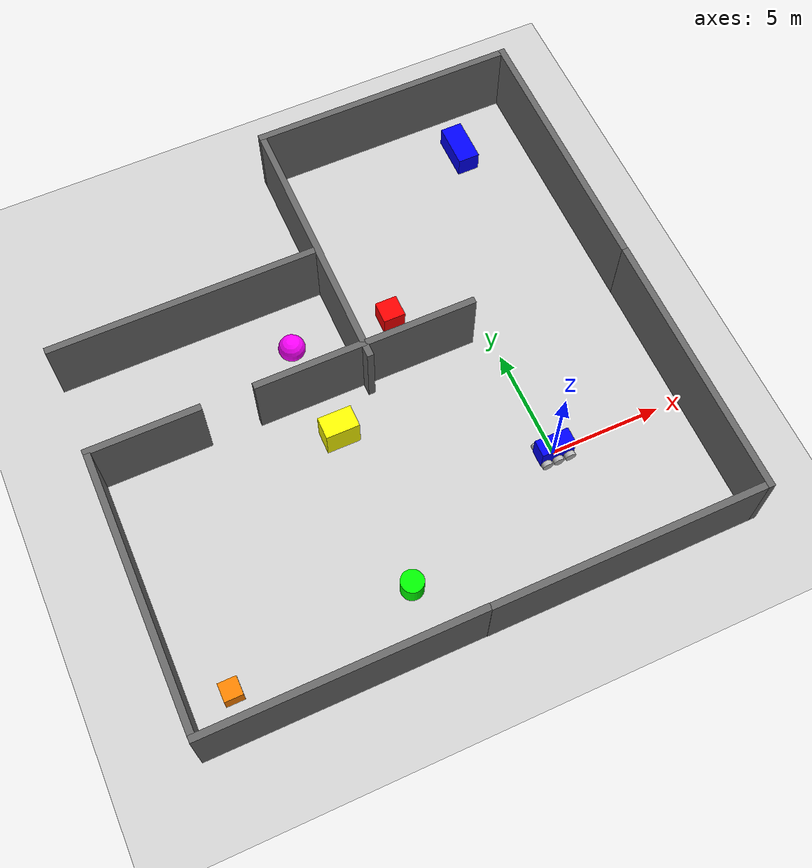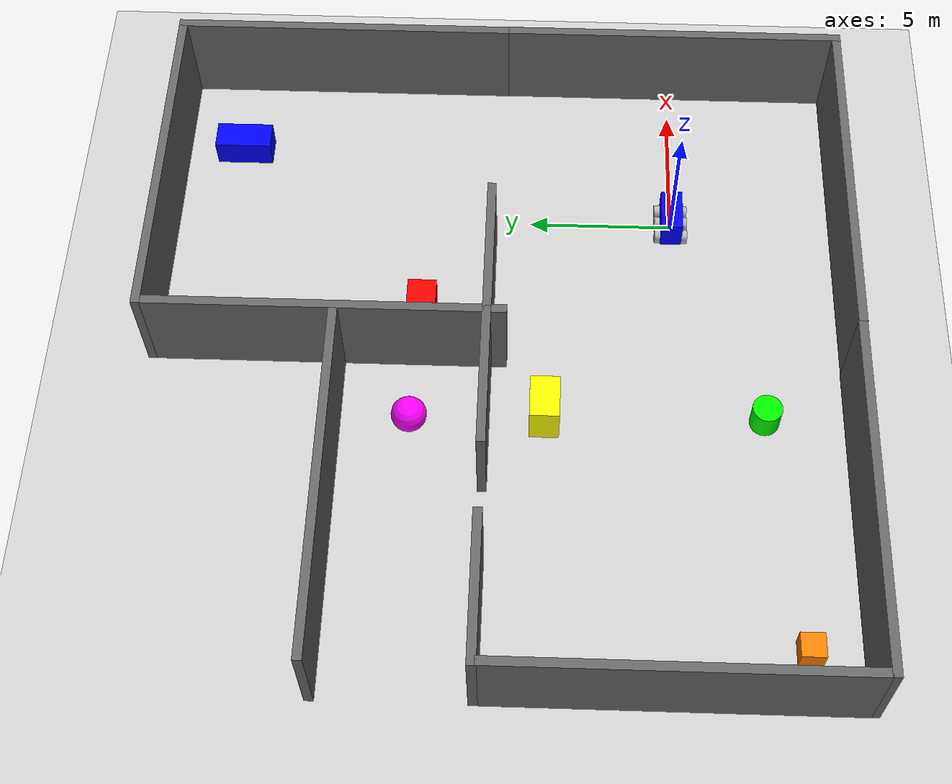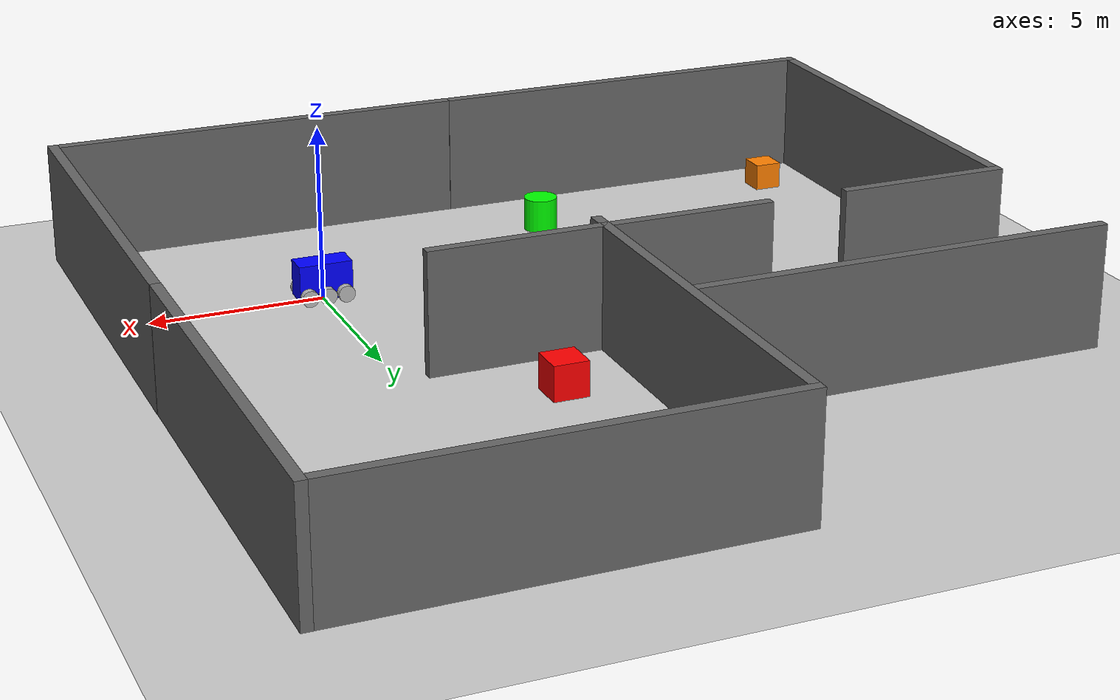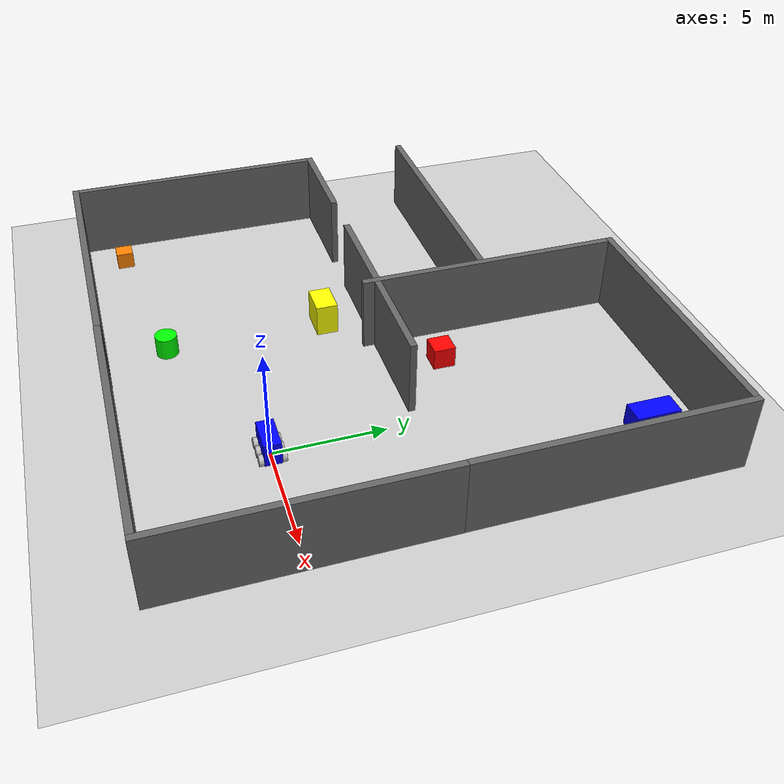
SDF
<sdf version="1.10">
 <world name="room">
  <physics name="1ms" type="ignored">
   <max_step_size>0.001</max_step_size>
   <real_time_factor>1.0</real_time_factor>
  </physics>
  <plugin filename="gz-sim-physics-system" name="gz::sim::systems::Physics"/>
  <plugin filename="gz-sim-user-commands-system" name="gz::sim::systems::UserCommands"/>
  <plugin filename="gz-sim-scene-broadcaster-system" name="gz::sim::systems::SceneBroadcaster"/>
  <plugin filename="gz-sim-sensors-system" name="gz::sim::systems::Sensors">
   <render_engine>ogre2</render_engine>
  </plugin>
  <plugin filename="gz-sim-thermal-sensor-system" name="gz::sim::systems::ThermalSensor"/>
  <light type="directional" name="sun">
   <pose>0 0 10 0 0 0</pose>
   <diffuse>0.8 0.8 0.8 1</diffuse>
   <specular>0.2 0.2 0.2 1</specular>
   <attenuation>
    <range>1000</range>
    <constant>0.9</constant>
    <linear>0.01</linear>
    <quadratic>0.001</quadratic>
   </attenuation>
   <direction>-0.5 0.1 -0.9</direction>
  </light>
  <model name="ground_plane">
   <static>true</static>
   <link name="link">
    <collision name="collision"><geometry><plane><normal>0 0 1</normal></plane></geometry></collision>
    <visual name="visual">
     <geometry><plane><normal>0 0 1</normal><size>100 100</size></plane></geometry>
     <material>
      <ambient>0.8 0.8 0.8 1</ambient>
      <diffuse>0.8 0.8 0.8 1</diffuse>
      <specular>0.8 0.8 0.8 1</specular>
     </material>
    </visual>
   </link>
  </model>
  <include><uri>file:///workspace/prototypes/3d-cartographer-demo/flip</uri><name>FLIP</name></include>
  <include>
   <uri>file:///workspace/models/gazebo/obstacles/walls/horizontalWall0_3x12x3_5</uri>
   <name>horizontalWallBig</name>
   <pose>6.1378297805786133 0 1.75 0 0 0</pose>
  </include>
  <include>
   <uri>file:///workspace/models/gazebo/obstacles/walls/horizontalWall0_3x12x3_5</uri>
   <name>verticalWallBig</name>
   <pose>7.2243547037942335e-06 -5.8478302955627441 1.75 0 0 1.5708000357176291</pose>
  </include>
  <include>
   <uri>file:///workspace/models/gazebo/obstacles/walls/verticalWall0_3x5x3_5</uri>
   <name>verticalWallSmall</name>
   <pose>-3.2926583290100098 6.3540897369384766 1.75 0 0 1.5707999672671717</pose>
  </include>
  <include>
   <uri>file:///workspace/models/gazebo/obstacles/walls/horizontalWall0_3x12x3_5</uri>
   <name>horizontalWallBig_1</name>
   <pose>6.1292400360107422 11.98643970489502 1.75 0 0 0</pose>
  </include>
  <include>
   <uri>file:///workspace/models/gazebo/obstacles/walls/verticalWall0_3x12x3_5</uri>
   <name>verticalWallBig_1</name>
   <pose>0.00072676839772611856 17.835100173950195 1.75 0 0 1.5707999672671711</pose>
  </include>
  <include>
   <uri>file:///workspace/models/gazebo/obstacles/walls/horizontalWall0_3x12x3_5</uri>
   <name>horizontalWallBig_2</name>
   <pose>-5.8510937690734863 11.696800231933594 1.75 0 0 0</pose>
  </include>
  <include>
   <uri>file:///workspace/models/gazebo/obstacles/walls/verticalWall0_3x12x3_5</uri>
   <name>verticalWallBig_2</name>
   <pose>-11.975589752197266 -5.8330597877502441 1.75 0 0 1.5707999672671717</pose>
  </include>
  <include>
   <uri>file:///workspace/models/gazebo/obstacles/walls/horizontalWall0_3x12x3_5</uri>
   <name>horizontalWallBig_3</name>
   <pose>-17.832462310791016 0.27177301049232483 1.75 0 0 0</pose>
  </include>
  <include>
   <uri>file:///workspace/models/gazebo/obstacles/walls/verticalWall0_3x5x3_5</uri>
   <name>verticalWallSmall_2</name>
   <pose>-8.252507209777832 6.3668909072875977 1.75 0 0 1.5707999672671717</pose>
  </include>
  <include>
   <uri>file:///workspace/models/gazebo/obstacles/walls/verticalWall0_3x5x3_5</uri>
   <name>verticalWallSmall_3</name>
   <pose>-15.482864379882812 6.3641500473022452 1.75 0 0 1.5707999672671717</pose>
  </include>
  <include>
   <uri>file:///workspace/models/gazebo/obstacles/walls/verticalWall0_3x12x3_5</uri>
   <name>verticalWallBig_3</name>
   <pose>-11.987987518310547 11.363300323486328 1.75 0 0 1.5707999672671717</pose>
  </include>
  <include>
   <uri>file:///workspace/models/gazebo/obstacles/shapes/redCube1x1x1</uri>
   <name>redCube</name>
   <pose>-3.6559658050537109 8.7096595764160156 0.5 0 0 0</pose>
  </include>
  <include>
   <uri>file:///workspace/models/gazebo/obstacles/shapes/greenCylinder0_5x1</uri>
   <name>greenCylinder</name>
   <pose>-7.8899140357971191 -3 0.5 0 0 0</pose>
  </include>
  <include>
   <uri>file:///workspace/models/gazebo/obstacles/shapes/blueBox1x2x1</uri>
   <name>blueBox</name>
   <pose>3 15.608985900878906 0.5 0 0 0</pose>
  </include>
  <include>
   <uri>file:///workspace/models/gazebo/obstacles/shapes/yellowBox1_5x1x1_5</uri>
   <name>yellowBox</name>
   <pose>-7.9256100654602051 4.3805632591247559 0.75 0 0 0</pose>
  </include>
  <include>
   <uri>file:///workspace/models/gazebo/obstacles/shapes/pinkBall0_6</uri>
   <name>pinkBall</name>
   <pose>-8.2594108581542969 8.8796701431274414 0.60000002384185791 0 0 0</pose>
  </include>
  <include>
   <uri>file:///workspace/models/gazebo/obstacles/shapes/orangeBox0_8x0_8x0_8</uri>
   <name>orangeBox</name>
   <pose>-16 -4 0.4 0 0 0</pose>
  </include>
 </world>
</sdf>

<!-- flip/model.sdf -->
<sdf version="1.10">
  <model name='FLIP' canonical_link='chassis'>
    <pose>0 0 0 0 0 0</pose>

    <link name='chassis'>
      <pose relative_to='__model__'>0 0 0.625 0 0 0</pose>
      <inertial>
        <pose>0 0 0 0 0 0</pose>
        <mass>450.0</mass>
        <inertia>
          <ixx>62.438</ixx>
          <ixy>0</ixy>
          <ixz>0</ixz>
          <iyy>131.438</iyy>
          <iyz>0</iyz>
          <izz>111.188</izz>
        </inertia>
      </inertial>
      <visual name='visual'>
        <geometry><box><size>1.55 0.75 1.05</size></box></geometry>
        <material>
          <ambient>0.0 0.0 1.0 1</ambient>
          <diffuse>0.0 0.0 1.0 1</diffuse>
          <specular>0.0 0.0 1.0 1</specular>
        </material>
      </visual>
      <collision name='collision'>
        <geometry><box><size>1.55 0.75 1.05</size></box></geometry>
      </collision>
      <sensor name="imu_sensor" type="imu">
        <always_on>1</always_on>
        <update_rate>20</update_rate>
        <visualize>true</visualize>
        <topic>imu</topic>
      </sensor>
      <sensor name="gpu_lidar" type="gpu_lidar">
        <pose>0.6 0 0.3 0 0 0</pose>
        <always_on>1</always_on>
        <update_rate>10</update_rate>
        <lidar>
          <scan>
            <horizontal>
              <samples>640</samples>
              <resolution>1</resolution>
              <min_angle>-1.396263</min_angle>
              <max_angle>1.396263</max_angle>
            </horizontal>
            <vertical>
              <samples>12</samples>
              <resolution>1</resolution>
              <min_angle>-0.261779</min_angle>
              <max_angle>0.261779</max_angle>
            </vertical>
          </scan>
          <range>
            <min>0.08</min>
            <max>10.0</max>
            <resolution>0.01</resolution>
          </range>
        </lidar>
        <visualize>true</visualize>
        <topic>lidar</topic>
      </sensor>
    </link>

    <!-- =============includes + plugin + joint van sensoren=========== -->
    <!-- THERMAL CAMERA -->
    <include>
      <uri>file:///workspace/models/plugins/thermal_camera.sdf</uri>
      <name>thermal_cam_instance</name>
      <pose relative_to="chassis">0.3 0 -0.2 0 0 0</pose>
    </include>

    <!-- thermal camera aan chassis -->
    <joint name="thermal_camera_fixed" type="fixed">
      <parent>chassis</parent>
      <child>thermal_cam_instance::thermal_body</child>
    </joint>

    <!-- FRONT CAMERA -->
    <include>
      <uri>file:///workspace/models/plugins/front_camera.sdf</uri>
      <name>front_camera</name>
      <pose>0.9 0 1.2 0 0 0</pose>
    </include>

    <joint name="front_cam_joint" type="fixed">
      <parent>chassis</parent>
      <child>front_camera::front_camera_link</child>
    </joint>

    <!-- REAR CAMERA -->
    <include>
      <uri>file:///workspace/models/plugins/rear_camera.sdf</uri>
      <name>rear_camera</name>
      <pose>-0.9 0 1.2 0 0 0</pose>
    </include>

    <joint name="rear_cam_joint" type="fixed">
      <parent>chassis</parent>
      <child>rear_camera::rear_camera_link</child>
    </joint>

    <link name='left_back_wheel'>
      <pose relative_to="chassis">-0.533 0.475 -0.383 -1.5707 0 0</pose>
      <inertial><mass>5</mass><inertia><ixx>0.694</ixx><ixy>0</ixy><ixz>0</ixz><iyy>1.460</iyy><iyz>0</iyz><izz>1.235</izz></inertia></inertial>
      <visual name='visual'><geometry><cylinder><radius>0.242</radius><length>0.2</length></cylinder></geometry></visual>
      <collision name='collision'><geometry><cylinder><radius>0.242</radius><length>0.2</length></cylinder></geometry></collision>
    </link>

    <link name='left_middle_wheel'>
      <pose relative_to="chassis">0 0.475 -0.383 -1.5707 0 0</pose>
      <inertial><mass>5</mass><inertia><ixx>0.694</ixx><ixy>0</ixy><ixz>0</ixz><iyy>1.460</iyy><iyz>0</iyz><izz>1.235</izz></inertia></inertial>
      <visual name='visual'><geometry><cylinder><radius>0.242</radius><length>0.2</length></cylinder></geometry></visual>
      <collision name='collision'><geometry><cylinder><radius>0.242</radius><length>0.2</length></cylinder></geometry></collision>
    </link>

    <link name='right_back_wheel'>
      <pose relative_to="chassis">-0.533 -0.475 -0.383 -1.5707 0 0</pose>
      <inertial><mass>5</mass><inertia><ixx>0.694</ixx><ixy>0</ixy><ixz>0</ixz><iyy>1.460</iyy><iyz>0</iyz><izz>1.235</izz></inertia></inertial>
      <visual name='visual'><geometry><cylinder><radius>0.242</radius><length>0.2</length></cylinder></geometry></visual>
      <collision name='collision'><geometry><cylinder><radius>0.242</radius><length>0.2</length></cylinder></geometry></collision>
    </link>

    <link name='right_middle_wheel'>
      <pose relative_to="chassis">0 -0.475 -0.383 -1.5707 0 0</pose>
      <inertial><mass>5</mass><inertia><ixx>0.694</ixx><ixy>0</ixy><ixz>0</ixz><iyy>1.460</iyy><iyz>0</iyz><izz>1.235</izz></inertia></inertial>
      <visual name='visual'><geometry><cylinder><radius>0.242</radius><length>0.2</length></cylinder></geometry></visual>
      <collision name='collision'><geometry><cylinder><radius>0.242</radius><length>0.2</length></cylinder></geometry></collision>
    </link>

    <link name='left_front_steer_link'>
      <pose relative_to="chassis">0.533 0.475 -0.383 0 0 0</pose>
      <inertial><mass>1.0</mass><inertia><ixx>0.01</ixx><ixy>0</ixy><ixz>0</ixz><iyy>0.01</iyy><iyz>0</iyz><izz>0.01</izz></inertia></inertial>
    </link>

    <link name='right_front_steer_link'>
      <pose relative_to="chassis">0.533 -0.475 -0.383 0 0 0</pose>
      <inertial><mass>1.0</mass><inertia><ixx>0.01</ixx><ixy>0</ixy><ixz>0</ixz><iyy>0.01</iyy><iyz>0</iyz><izz>0.01</izz></inertia></inertial>
    </link>

    <link name='left_front_wheel'>
      <pose relative_to="left_front_steer_link">0 0 0 -1.5707 0 0</pose>
      <inertial><mass>5</mass><inertia><ixx>0.694</ixx><ixy>0</ixy><ixz>0</ixz><iyy>1.460</iyy><iyz>0</iyz><izz>1.235</izz></inertia></inertial>
      <visual name='visual'>
        <geometry><cylinder><radius>0.242</radius><length>0.2</length></cylinder></geometry>
      </visual>
      <collision name='collision'><geometry><cylinder><radius>0.242</radius><length>0.2</length></cylinder></geometry></collision>
    </link>

    <link name='right_front_wheel'>
      <pose relative_to="right_front_steer_link">0 0 0 -1.5707 0 0</pose>
      <inertial><mass>5</mass><inertia><ixx>0.694</ixx><ixy>0</ixy><ixz>0</ixz><iyy>1.460</iyy><iyz>0</iyz><izz>1.235</izz></inertia></inertial>
      <visual name='visual'>
        <geometry><cylinder><radius>0.242</radius><length>0.2</length></cylinder></geometry>
      </visual>
      <collision name='collision'><geometry><cylinder><radius>0.242</radius><length>0.2</length></cylinder></geometry></collision>
    </link>

    <!-- Wheel joints -->
    <joint name="left_front_wheel_joint" type="revolute">
    <parent>chassis</parent>
    <child>left_front_wheel</child>
    <axis><xyz>0 0 1</xyz></axis>
    </joint>

    <joint name="left_middle_wheel_joint" type="revolute">
    <parent>chassis</parent>
    <child>left_middle_wheel</child>
    <axis><xyz>0 0 1</xyz></axis>
    </joint>

    <joint name="left_back_wheel_joint" type="revolute">
    <parent>chassis</parent>
    <child>left_back_wheel</child>
    <axis><xyz>0 0 1</xyz></axis>
    </joint>

    <joint name="right_front_wheel_joint" type="revolute">
    <parent>chassis</parent>
    <child>right_front_wheel</child>
    <axis><xyz>0 0 1</xyz></axis>
    </joint>

    <joint name="right_middle_wheel_joint" type="revolute">
    <parent>chassis</parent>
    <child>right_middle_wheel</child>
    <axis><xyz>0 0 1</xyz></axis>
    </joint>

    <joint name="right_back_wheel_joint" type="revolute">
    <parent>chassis</parent>
    <child>right_back_wheel</child>
    <axis><xyz>0 0 1</xyz></axis>
    </joint>

    <!-- Diff Drive Plugin -->
    <plugin
    filename="gz-sim-diff-drive-system"
    name="gz::sim::systems::DiffDrive">

    <!-- all 6 wheels driven -->
    <left_joint>left_back_wheel_joint</left_joint>
    <left_joint>left_middle_wheel_joint</left_joint>
    <left_joint>left_front_wheel_joint</left_joint>

    <right_joint>right_back_wheel_joint</right_joint>
    <right_joint>right_middle_wheel_joint</right_joint>
    <right_joint>right_front_wheel_joint</right_joint>

    <wheel_separation>0.95</wheel_separation>
    <wheel_radius>0.242</wheel_radius>

    <topic>/model/FLIP/cmd_vel</topic>
    <odom_topic>/model/FLIP/odometry</odom_topic>
    <tf_topic>/model/FLIP/tf</tf_topic>

    <frame_id>odom</frame_id>
    <child_frame_id>chassis</child_frame_id>

    </plugin>

    <!-- Moving Forward-->
    <plugin filename="gz-sim-triggered-publisher-system"
            name="gz::sim::systems::TriggeredPublisher">
        <input type="gz.msgs.Int32" topic="/keyboard/keypress">
            <match field="data">16777235</match>
        </input>
        <output type="gz.msgs.Twist" topic="/model/FLIP/cmd_vel">
            linear: {x: 0.5}, angular: {z: 0.0}
        </output>
    </plugin>

    <!-- Moving Backward-->
    <plugin filename="gz-sim-triggered-publisher-system"
            name="gz::sim::systems::TriggeredPublisher">
        <input type="gz.msgs.Int32" topic="/keyboard/keypress">
            <match field="data">16777237</match>
        </input>
        <output type="gz.msgs.Twist" topic="/model/FLIP/cmd_vel">
            linear: {x: -0.5}, angular: {z: 0.0}
        </output>
    </plugin>

    <!-- Moving left-->
    <plugin filename="gz-sim-triggered-publisher-system"
            name="gz::sim::systems::TriggeredPublisher">
        <input type="gz.msgs.Int32" topic="/keyboard/keypress">
            <match field="data">16777234</match>
        </input>
        <output type="gz.msgs.Twist" topic="/model/FLIP/cmd_vel">
            linear: {x: 0.0}, angular: {z: 1.0}
        </output>
    </plugin>

    <!-- Moving right-->
    <plugin filename="gz-sim-triggered-publisher-system"
            name="gz::sim::systems::TriggeredPublisher">
        <input type="gz.msgs.Int32" topic="/keyboard/keypress">
            <match field="data">16777236</match>
        </input>
        <output type="gz.msgs.Twist" topic="/model/FLIP/cmd_vel">
            linear: {x: 0.0}, angular: {z: -1.0}
        </output>
    </plugin>
  </model>
</sdf>

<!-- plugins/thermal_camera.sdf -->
<sdf version="1.10">

  <model name="thermal_camera_model" canonical_link="thermal_body">
    <pose>0 0 0 0 0 0</pose>
    <static>false</static>

    <!-- Gecombineerde thermal camera link -->
    <link name="thermal_body">
      <pose>0 0 0 0 0 0</pose>

      <!-- Behuizing -->
      <visual name="thermal_visual">
        <geometry>
          <box>
            <size>0.1 0.1 0.1</size>
          </box>
        </geometry>
        <material>
          <ambient>1 0 0 1</ambient>
          <diffuse>1 0 0 1</diffuse>
          <specular>0.2 0.2 0.2 1</specular>
        </material>
      </visual>

      <!-- Collision -->
      <collision name="thermal_collision">
        <geometry>
          <box>
            <size>0.1 0.1 0.1</size>
          </box>
        </geometry>
      </collision>

      <!-- Massa -->
      <inertial>
        <mass>0.5</mass>
        <inertia>
          <ixx>0.001</ixx>
          <iyy>0.001</iyy>
          <izz>0.001</izz>
          <ixy>0</ixy>
          <ixz>0</ixz>
          <iyz>0</iyz>
        </inertia>
      </inertial>

      <!-- Thermal sensor (nu in dezelfde link) -->
      <sensor name="thermal_camera" type="thermal">
        <pose>0 0 0 0 0 0</pose>
        <always_on>true</always_on>
        <update_rate>30</update_rate>
        <visualize>true</visualize>

        <topic>/FLIP/thermal_camera</topic>

        <camera>
          <horizontal_fov>1.047</horizontal_fov>
          <image>
            <width>320</width>
            <height>240</height>
            <format>L16</format>
          </image>
          <clip>
            <near>0.1</near>
            <far>100</far>
          </clip>
        </camera>
      </sensor>

    </link>

  </model>
</sdf>

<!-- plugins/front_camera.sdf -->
<sdf version="1.10">

  <model name="front_camera" canonical_link="front_camera_link">
    <pose>0 0 0 0 0 0</pose>
    <static>false</static>

    <link name="front_camera_link">

      <inertial>
        <mass>0.5</mass>
        <inertia>
          <ixx>0.001</ixx>
          <iyy>0.001</iyy>
          <izz>0.001</izz>
        </inertia>
      </inertial>

      <sensor name="camera" type="camera">
        <pose>0 0 0 0 0 0</pose>

        <always_on>true</always_on>
        <update_rate>30</update_rate>

        <camera>
          <horizontal_fov>1.047</horizontal_fov>
          <image>
            <width>640</width>
            <height>480</height>
            <format>R8G8B8</format>
          </image>
          <clip>
            <near>0.1</near>
            <far>100</far>
          </clip>
        </camera>

        <topic>/front/image</topic>
      </sensor>

    </link>
  </model>

</sdf>

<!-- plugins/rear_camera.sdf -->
<sdf version="1.10">

  <model name="rear_camera" canonical_link="rear_camera_link">
    <pose>0 0 0 0 0 0</pose>
    <static>false</static>

    <link name="rear_camera_link">

      <inertial>
        <mass>0.5</mass>
        <inertia>
          <ixx>0.001</ixx>
          <iyy>0.001</iyy>
          <izz>0.001</izz>
        </inertia>
      </inertial>

      <sensor name="camera" type="camera">
        <pose>0 0 0 0 0 3.14159</pose>

        <always_on>true</always_on>
        <update_rate>30</update_rate>

        <camera>
          <horizontal_fov>1.047</horizontal_fov>
          <image>
            <width>640</width>
            <height>480</height>
            <format>R8G8B8</format>
          </image>
          <clip>
            <near>0.1</near>
            <far>100</far>
          </clip>
        </camera>

        <topic>/rear/image</topic>
      </sensor>

    </link>
  </model>

</sdf>

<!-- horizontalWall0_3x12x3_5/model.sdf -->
<sdf version="1.10">
    <model name="horizontalWall0_3x12x3_5">
      <static>true</static>
      <pose>4.2 0 1.75 0 0 0</pose>
      <link name="link">
        <collision name="collision">
          <geometry><box><size>0.3 12.0 3.5</size></box></geometry>
        </collision>
        <visual name="visual">
          <geometry><box><size>0.3 12.0 3.5</size></box></geometry>
          <material>
            <ambient>0.4 0.4 0.4 1</ambient>
            <diffuse>0.4 0.4 0.4 1</diffuse>
            <specular>0.2 0.2 0.2 1</specular>
          </material>
        </visual>
      </link>
    </model>
</sdf>

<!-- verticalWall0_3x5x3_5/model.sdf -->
<sdf version="1.10">
    <model name="horizontalWall0_3x5x3_5">
      <static>true</static>
      <pose>4.2 0 1.75 0 0 0</pose>
      <link name="link">
        <collision name="collision">
          <geometry><box><size>0.3 5.0 3.5</size></box></geometry>
        </collision>
        <visual name="visual">
          <geometry><box><size>0.3 5.0 3.5</size></box></geometry>
          <material>
            <ambient>0.4 0.4 0.4 1</ambient>
            <diffuse>0.4 0.4 0.4 1</diffuse>
            <specular>0.2 0.2 0.2 1</specular>
          </material>
        </visual>
      </link>
    </model>
</sdf>

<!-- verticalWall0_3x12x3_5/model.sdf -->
<sdf version="1.10">
    <model name="verticalWall0_3x12x3_5">
      <static>true</static>
      <pose>0 3.9 1.75 0 0 1.5708</pose>
      <link name="link">
        <collision name="collision">
          <geometry><box><size>0.3 12.0 3.5</size></box></geometry>
        </collision>
        <visual name="visual">
          <geometry><box><size>0.3 12.0 3.5</size></box></geometry>
          <material>
            <ambient>0.4 0.4 0.4 1</ambient>
            <diffuse>0.4 0.4 0.4 1</diffuse>
            <specular>0.2 0.2 0.2 1</specular>
          </material>
        </visual>
      </link>
    </model>
</sdf>

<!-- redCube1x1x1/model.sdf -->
<sdf version="1.10">
    <model name="redCube1x1x1">
      <static>true</static>
      <pose>3 2 0.5 0 0 0</pose>
      <link name="link">
        <collision name="collision">
          <geometry><box><size>1 1 1</size></box></geometry>
        </collision>
        <visual name="visual">
          <geometry><box><size>1 1 1</size></box></geometry>
          <material>
            <ambient>1 0 0 1</ambient>
            <diffuse>1 0 0 1</diffuse>
            <specular>0.5 0.5 0.5 1</specular>
          </material>
        </visual>
      </link>
    </model>
</sdf>

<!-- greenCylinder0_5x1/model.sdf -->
<sdf version="1.10">
    <model name="greenCylinder0_5x1">
      <static>true</static>
      <pose>-2 -3 0.5 0 0 0</pose>
      <link name="link">
        <collision name="collision">
          <geometry><cylinder><radius>0.5</radius><length>1.0</length></cylinder></geometry>
        </collision>
        <visual name="visual">
          <geometry><cylinder><radius>0.5</radius><length>1.0</length></cylinder></geometry>
          <material><ambient>0 1 0 1</ambient><diffuse>0 1 0 1</diffuse></material>
        </visual>
      </link>
    </model>
</sdf>

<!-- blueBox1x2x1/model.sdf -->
<sdf version="1.10">
    <model name="blueBox1x2x1">
      <static>true</static>
      <pose>3 -2 0.5 0 0 0</pose>
      <link name="link">
        <collision name="collision">
          <geometry><box><size>1 2 1</size></box></geometry>
        </collision>
        <visual name="visual">
          <geometry><box><size>1 2 1</size></box></geometry>
          <material><ambient>0 0 1 1</ambient><diffuse>0 0 1 1</diffuse></material>
        </visual>
      </link>
    </model>
</sdf>

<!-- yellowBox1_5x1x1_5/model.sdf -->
<sdf version="1.10">
    <model name="yellowBox1_5x1x1_5">
      <static>true</static>
      <pose>-3 2 0.75 0 0 0</pose>
      <link name="link">
        <collision name="collision">
          <geometry><box><size>1.5 1 1.5</size></box></geometry>
        </collision>
        <visual name="visual">
          <geometry><box><size>1.5 1 1.5</size></box></geometry>
          <material><ambient>1 1 0 1</ambient><diffuse>1 1 0 1</diffuse></material>
        </visual>
      </link>
    </model>
</sdf>

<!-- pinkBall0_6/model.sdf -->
<sdf version="1.10">
    <model name="pinkBall0_6">
      <static>true</static>
      <pose>1 3 0.6 0 0 0</pose>
      <link name="link">
        <collision name="collision">
          <geometry><sphere><radius>0.6</radius></sphere></geometry>
        </collision>
        <visual name="visual">
          <geometry><sphere><radius>0.6</radius></sphere></geometry>
          <material><ambient>1 0 1 1</ambient><diffuse>1 0 1 1</diffuse></material>
        </visual>
      </link>
    </model>
</sdf>

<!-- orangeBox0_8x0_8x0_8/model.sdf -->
<sdf version="1.10">
    <model name="orangeBox0_8x0_8x0_8">
      <static>true</static>
      <pose>-2 0 0.4 0 0 0</pose>
      <link name="link">
        <collision name="collision">
          <geometry><box><size>0.8 0.8 0.8</size></box></geometry>
        </collision>
        <visual name="visual">
          <geometry><box><size>0.8 0.8 0.8</size></box></geometry>
          <material><ambient>1 0.5 0 1</ambient><diffuse>1 0.5 0 1</diffuse></material>
        </visual>
      </link>
    </model>
</sdf>
